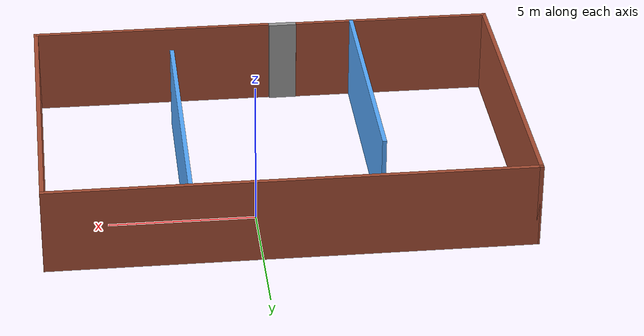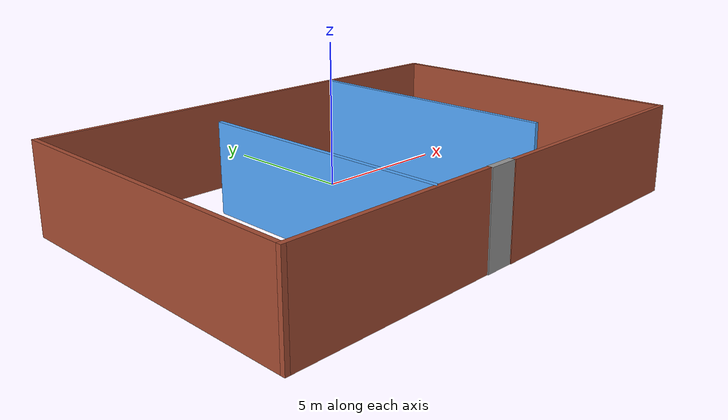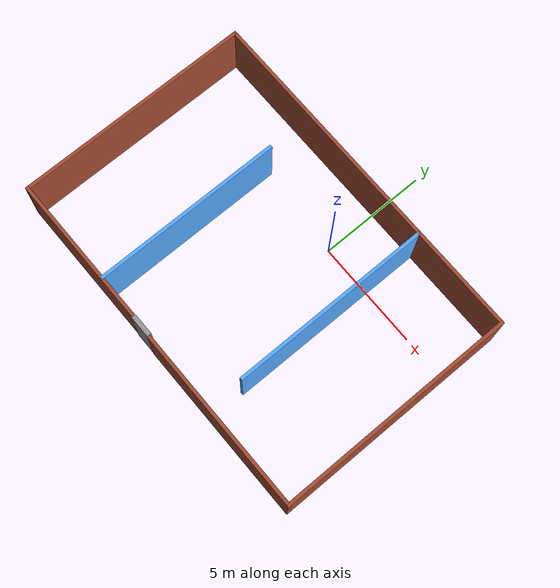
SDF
<?xml version='1.0'?>
<sdf version='1.6'>
  <model name='dragonHouse'>
    <pose frame=''>-1.008 -2.902 0 0 -0 0</pose>
    <link name='Door_0'>
      <collision name='Door_0_Collision'>
        <geometry>
          <box>
            <size>0.990813 0.2 3</size>
          </box>
        </geometry>
        <pose frame=''>0 0 1.5 0 -0 0</pose>
      </collision>
      <visual name='Door_0_Visual'>
        <pose frame=''>0 0 1.5 0 -0 0</pose>
        <geometry>
          <box>
            <size>0.990813 0.2 3</size>
          </box>
        </geometry>
        <material>
          <script>
            <uri>file://media/materials/scripts/gazebo.material</uri>
            <name>Gazebo/Grey</name>
          </script>
        </material>
      </visual>
      <pose frame=''>-0.750469 -5.40399 0 0 -0 0.00282</pose>
    </link>
    <link name='Wall_0'>
      <collision name='Wall_0_Collision'>
        <geometry>
          <box>
            <size>7 0.15 3</size>
          </box>
        </geometry>
        <pose frame=''>0 0 1.5 0 -0 0</pose>
      </collision>
      <visual name='Wall_0_Visual'>
        <pose frame=''>0 0 1.5 0 -0 0</pose>
        <geometry>
          <box>
            <size>7 0.15 3</size>
          </box>
        </geometry>
        <material>
          <script>
            <uri>file://media/materials/scripts/gazebo.material</uri>
            <name>Gazebo/Bricks</name>
          </script>
          <ambient>1 1 1 1</ambient>
        </material>
        <meta>
          <layer>0</layer>
        </meta>
      </visual>
      <pose frame=''>-4.75 -5.402 0 0 -0 3.14159</pose>
    </link>
    <link name='Wall_1'>
      <collision name='Wall_1_Collision'>
        <geometry>
          <box>
            <size>11 0.15 3</size>
          </box>
        </geometry>
        <pose frame=''>0 0 1.5 0 -0 0</pose>
      </collision>
      <visual name='Wall_1_Visual'>
        <pose frame=''>0 0 1.5 0 -0 0</pose>
        <geometry>
          <box>
            <size>11 0.15 3</size>
          </box>
        </geometry>
        <material>
          <script>
            <uri>file://media/materials/scripts/gazebo.material</uri>
            <name>Gazebo/Bricks</name>
          </script>
          <ambient>1 1 1 1</ambient>
        </material>
        <meta>
          <layer>0</layer>
        </meta>
      </visual>
      <pose frame=''>-8.175 0.023 0 0 -0 1.5708</pose>
    </link>
    <link name='Wall_10'>
      <collision name='Wall_10_Collision'>
        <geometry>
          <box>
            <size>9.25 0.15 3</size>
          </box>
        </geometry>
        <pose frame=''>0 0 1.5 0 -0 0</pose>
      </collision>
      <visual name='Wall_10_Visual'>
        <pose frame=''>0 0 1.5 0 -0 0</pose>
        <geometry>
          <box>
            <size>9.25 0.15 3</size>
          </box>
        </geometry>
        <material>
          <script>
            <uri>file://media/materials/scripts/gazebo.material</uri>
            <name>Gazebo/Grey</name>
          </script>
          <ambient>0.333333 0.666667 1 1</ambient>
        </material>
        <meta>
          <layer>0</layer>
        </meta>
      </visual>
      <pose frame=''>3.371 0.836 0 0 0 -1.5708</pose>
    </link>
    <link name='Wall_2'>
      <collision name='Wall_2_Collision'>
        <geometry>
          <box>
            <size>16.5 0.15 3</size>
          </box>
        </geometry>
        <pose frame=''>0 0 1.5 0 -0 0</pose>
      </collision>
      <visual name='Wall_2_Visual'>
        <pose frame=''>0 0 1.5 0 -0 0</pose>
        <geometry>
          <box>
            <size>16.5 0.15 3</size>
          </box>
        </geometry>
        <material>
          <script>
            <uri>file://media/materials/scripts/gazebo.material</uri>
            <name>Gazebo/Bricks</name>
          </script>
          <ambient>1 1 1 1</ambient>
        </material>
        <meta>
          <layer>0</layer>
        </meta>
      </visual>
      <pose frame=''>0 5.448 0 0 -0 0</pose>
    </link>
    <link name='Wall_3'>
      <collision name='Wall_3_Collision'>
        <geometry>
          <box>
            <size>11.046 0.15 3</size>
          </box>
        </geometry>
        <pose frame=''>0 0 1.5 0 -0 0</pose>
      </collision>
      <visual name='Wall_3_Visual'>
        <pose frame=''>0 0 1.5 0 -0 0</pose>
        <geometry>
          <box>
            <size>11.046 0.15 3</size>
          </box>
        </geometry>
        <material>
          <script>
            <uri>file://media/materials/scripts/gazebo.material</uri>
            <name>Gazebo/Bricks</name>
          </script>
          <ambient>1 1 1 1</ambient>
        </material>
        <meta>
          <layer>0</layer>
        </meta>
      </visual>
      <pose frame=''>8.175 0 0 0 0 -1.5708</pose>
    </link>
    <link name='Wall_4'>
      <collision name='Wall_4_Collision'>
        <geometry>
          <box>
            <size>8.5 0.15 3</size>
          </box>
        </geometry>
        <pose frame=''>0 0 1.5 0 -0 0</pose>
      </collision>
      <visual name='Wall_4_Visual'>
        <pose frame=''>0 0 1.5 0 -0 0</pose>
        <geometry>
          <box>
            <size>8.5 0.15 3</size>
          </box>
        </geometry>
        <material>
          <script>
            <uri>file://media/materials/scripts/gazebo.material</uri>
            <name>Gazebo/Bricks</name>
          </script>
          <ambient>1 1 1 1</ambient>
        </material>
        <meta>
          <layer>0</layer>
        </meta>
      </visual>
      <pose frame=''>4 -5.448 0 0 -0 3.14159</pose>
    </link>
    <link name='Wall_8'>
      <collision name='Wall_8_Collision'>
        <geometry>
          <box>
            <size>8.75 0.15 3</size>
          </box>
        </geometry>
        <pose frame=''>0 0 1.5 0 -0 0</pose>
      </collision>
      <visual name='Wall_8_Visual'>
        <pose frame=''>0 0 1.5 0 -0 0</pose>
        <geometry>
          <box>
            <size>8.75 0.15 3</size>
          </box>
        </geometry>
        <material>
          <script>
            <uri>file://media/materials/scripts/gazebo.material</uri>
            <name>Gazebo/Grey</name>
          </script>
          <ambient>0.333333 0.666667 1 1</ambient>
        </material>
        <meta>
          <layer>0</layer>
        </meta>
      </visual>
      <pose frame=''>-3.276 -1.053 0 0 0 -1.5708</pose>
    </link>
    <static>1</static>
  </model>
</sdf>
